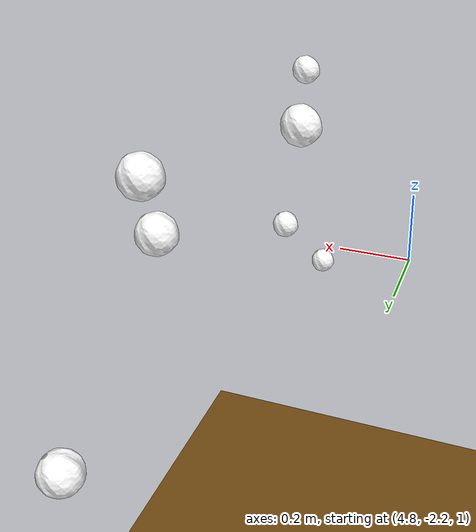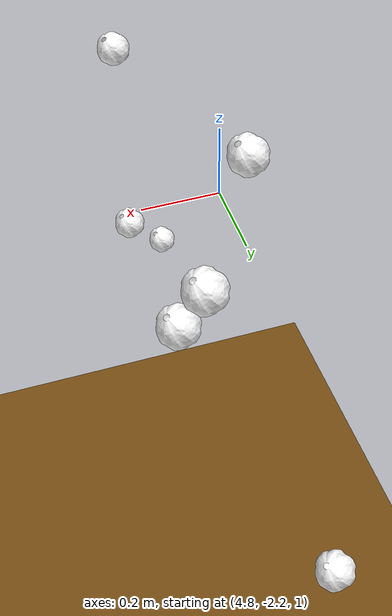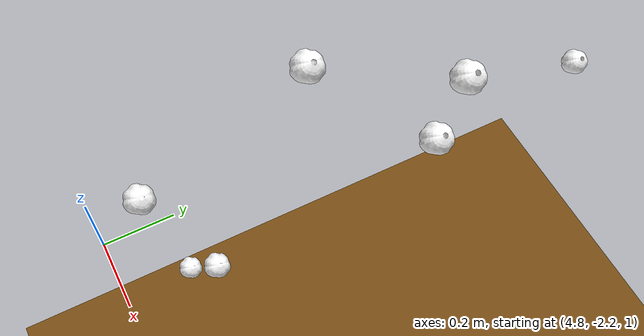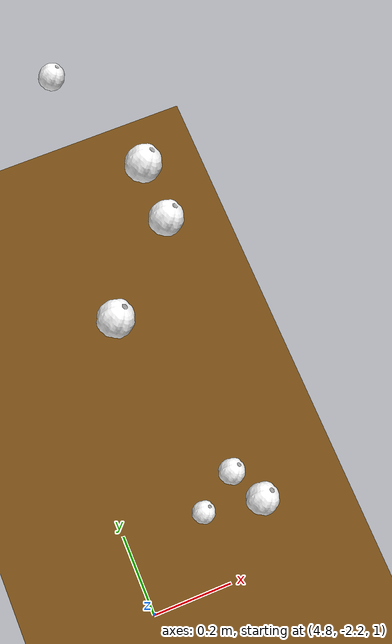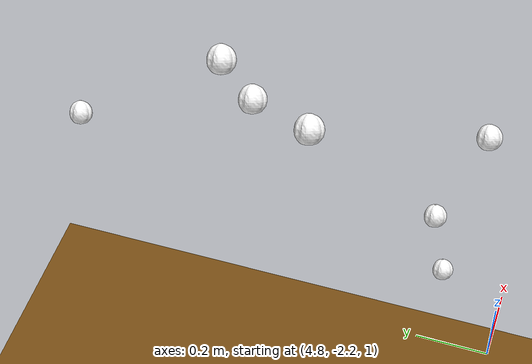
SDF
<sdf version="1.10">
 <world name="field">
  <model name="ground_plane">
   <static>true</static>
   <pose>0 0 -0.025 0 0 0</pose>
   <link name="ground_link">
    <collision name="collision"><geometry><box><size>22 14 0.05</size></box></geometry></collision>
    <visual name="visual">
     <geometry><box><size>22 14 0.05</size></box></geometry>
     <material><ambient>0.45 0.29 0.07 1</ambient><diffuse>0.45 0.29 0.07 1</diffuse></material>
    </visual>
   </link>
  </model>
  <model name="tomato_54_fruit_1">
   <static>true</static>
   <pose>5.0720059289508761 -2.0859557276438956 1.5551672651711521 0 0 0</pose>
   <link name="fruit_link">
    <collision name="fruit_collision">
     <geometry><sphere><radius>0.036452989887354348</radius></sphere></geometry>
    </collision>
    <visual name="fruit_visual">
     <geometry>
      <mesh>
       <uri>model://tomato_fruit/meshes/fruit.dae</uri>
       <scale>0.072905979774708696 0.072905979774708696 0.072905979774708696</scale>
      </mesh>
     </geometry>
     <material>
      <ambient>1 1 1 1</ambient>
      <diffuse>1 1 1 1</diffuse>
      <pbr>
       <metal>
        <albedo_map>model://tomato_0/materials/textures/AG15frt4.png</albedo_map>
        <metalness>0</metalness>
        <roughness>0.4</roughness>
       </metal>
      </pbr>
     </material>
    </visual>
   </link>
  </model>
  <model name="tomato_54_fruit_3">
   <static>true</static>
   <pose>5.0862713482533861 -1.9717957825203491 1.1784228575379454 0 0 0</pose>
   <link name="fruit_link">
    <collision name="fruit_collision">
     <geometry><sphere><radius>0.034687853567128016</radius></sphere></geometry>
    </collision>
    <visual name="fruit_visual">
     <geometry>
      <mesh>
       <uri>model://tomato_fruit/meshes/fruit.dae</uri>
       <scale>0.069375707134256032 0.069375707134256032 0.069375707134256032</scale>
      </mesh>
     </geometry>
     <material>
      <ambient>1 1 1 1</ambient>
      <diffuse>1 1 1 1</diffuse>
      <pbr>
       <metal>
        <albedo_map>model://tomato_0/materials/textures/AG15frt1.png</albedo_map>
        <metalness>0</metalness>
        <roughness>0.4</roughness>
       </metal>
      </pbr>
     </material>
    </visual>
   </link>
  </model>
  <model name="tomato_54_fruit_4">
   <static>true</static>
   <pose>4.9997305895703787 -2.0238562586186912 1.0597550501321336 0 0 0</pose>
   <link name="fruit_link">
    <collision name="fruit_collision">
     <geometry><sphere><radius>0.03136837182549073</radius></sphere></geometry>
    </collision>
    <visual name="fruit_visual">
     <geometry>
      <mesh>
       <uri>model://tomato_fruit/meshes/fruit.dae</uri>
       <scale>0.062736743650981461 0.062736743650981461 0.062736743650981461</scale>
      </mesh>
     </geometry>
     <material>
      <ambient>1 1 1 1</ambient>
      <diffuse>1 1 1 1</diffuse>
      <pbr>
       <metal>
        <albedo_map>model://tomato_0/materials/textures/AG15frt1.png</albedo_map>
        <metalness>0</metalness>
        <roughness>0.4</roughness>
       </metal>
      </pbr>
     </material>
    </visual>
   </link>
  </model>
  <model name="tomato_55_fruit_1">
   <static>true</static>
   <pose>5.144157006850385 -1.4182694148798252 1.4202870638572738 0 0 0</pose>
   <link name="fruit_link">
    <collision name="fruit_collision">
     <geometry><sphere><radius>0.044525979379672113</radius></sphere></geometry>
    </collision>
    <visual name="fruit_visual">
     <geometry>
      <mesh>
       <uri>model://tomato_fruit/meshes/fruit.dae</uri>
       <scale>0.089051958759344227 0.089051958759344227 0.089051958759344227</scale>
      </mesh>
     </geometry>
     <material>
      <ambient>1 1 1 1</ambient>
      <diffuse>1 1 1 1</diffuse>
      <pbr>
       <metal>
        <albedo_map>model://tomato_0/materials/textures/AG15frt1.png</albedo_map>
        <metalness>0</metalness>
        <roughness>0.4</roughness>
       </metal>
      </pbr>
     </material>
    </visual>
   </link>
  </model>
  <model name="tomato_55_fruit_3">
   <static>true</static>
   <pose>5.1205764815205965 -1.3407292301150622 1.5728988016784688 0 0 0</pose>
   <link name="fruit_link">
    <collision name="fruit_collision">
     <geometry><sphere><radius>0.044618199031885623</radius></sphere></geometry>
    </collision>
    <visual name="fruit_visual">
     <geometry>
      <mesh>
       <uri>model://tomato_fruit/meshes/fruit.dae</uri>
       <scale>0.089236398063771247 0.089236398063771247 0.089236398063771247</scale>
      </mesh>
     </geometry>
     <material>
      <ambient>1 1 1 1</ambient>
      <diffuse>1 1 1 1</diffuse>
      <pbr>
       <metal>
        <albedo_map>model://tomato_0/materials/textures/AG15frt1.png</albedo_map>
        <metalness>0</metalness>
        <roughness>0.4</roughness>
       </metal>
      </pbr>
     </material>
    </visual>
   </link>
  </model>
  <model name="tomato_55_fruit_4">
   <static>true</static>
   <pose>4.9381635265492605 -1.6418782844699886 1.5806225529717639 0 0 0</pose>
   <link name="fruit_link">
    <collision name="fruit_collision">
     <geometry><sphere><radius>0.043936264364924045</radius></sphere></geometry>
    </collision>
    <visual name="fruit_visual">
     <geometry>
      <mesh>
       <uri>model://tomato_fruit/meshes/fruit.dae</uri>
       <scale>0.08787252872984809 0.08787252872984809 0.08787252872984809</scale>
      </mesh>
     </geometry>
     <material>
      <ambient>1 1 1 1</ambient>
      <diffuse>1 1 1 1</diffuse>
      <pbr>
       <metal>
        <albedo_map>model://tomato_0/materials/textures/AG15frt4.png</albedo_map>
        <metalness>0</metalness>
        <roughness>0.4</roughness>
       </metal>
      </pbr>
     </material>
    </visual>
   </link>
  </model>
  <model name="tomato_56_fruit_2">
   <static>true</static>
   <pose>5.0426290086856911 -0.93383825992183667 1.317552053471112 0 0 0</pose>
   <link name="fruit_link">
    <collision name="fruit_collision">
     <geometry><sphere><radius>0.035642916085552326</radius></sphere></geometry>
    </collision>
    <visual name="fruit_visual">
     <geometry>
      <mesh>
       <uri>model://tomato_fruit/meshes/fruit.dae</uri>
       <scale>0.071285832171104652 0.071285832171104652 0.071285832171104652</scale>
      </mesh>
     </geometry>
     <material>
      <ambient>1 1 1 1</ambient>
      <diffuse>1 1 1 1</diffuse>
      <pbr>
       <metal>
        <albedo_map>model://tomato_0/materials/textures/AG15frt1.png</albedo_map>
        <metalness>0</metalness>
        <roughness>0.4</roughness>
       </metal>
      </pbr>
     </material>
    </visual>
   </link>
  </model>
 </world>
</sdf>
